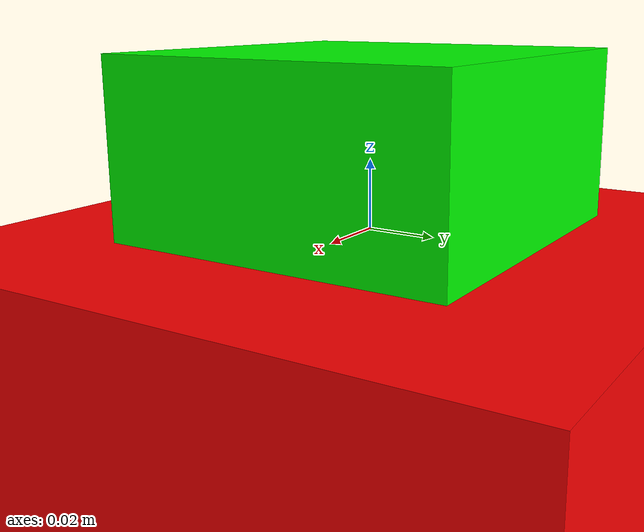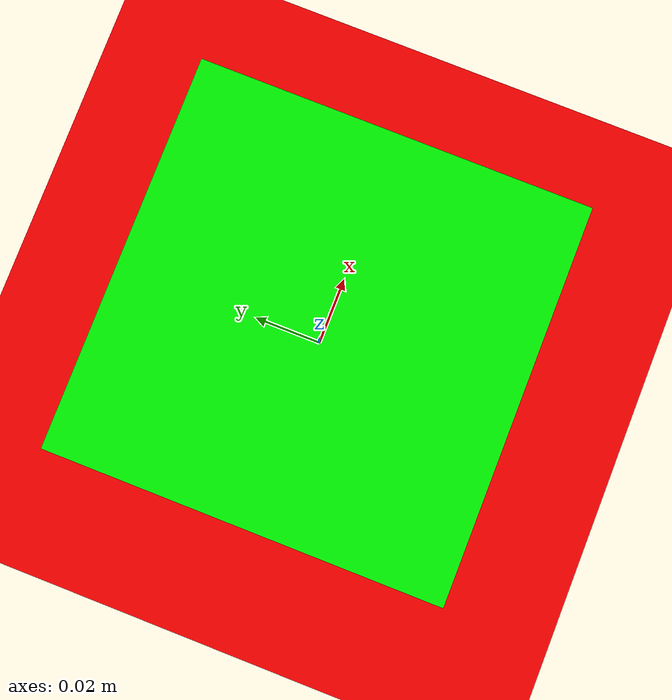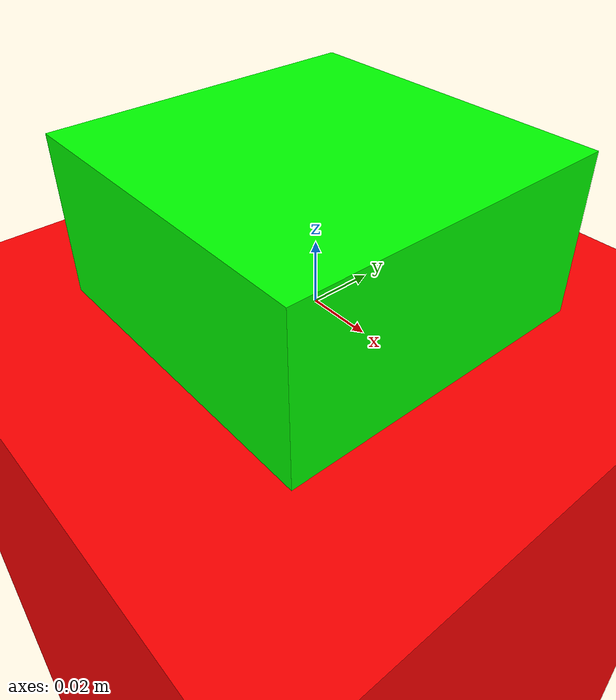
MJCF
<mujoco model="Cube">
        <compiler inertiafromgeom="true" angle="degree"/>
        <option timestep = "$dt">
                <flag refsafe = "disable" />
        </option>
        <asset>
                <texture name="grid" type="2d" builtin="checker" rgb1=".2 .3 .4" rgb2=".1 .15 .2" width="512" height="512" mark="edge" markrgb=".8 .8 .8"/>
                <material name="grid" texture="grid" texrepeat="1 1" texuniform="true" reflectance=".3"/>
        </asset>
        <worldbody>
                <geom name="floor" pos="0 0 -1.0" size="1.0 1.0 .01" type="plane" material="grid"/>
                <light directional="true" diffuse=".2 .2 .2" specular="0 0 0" pos="0 0 5" dir="0 0 -1" castshadow="false"/>
                <light directional="false" diffuse=".8 .8 .8" specular="0.3 0.3 0.3" pos="0 0 4.0" dir="0 0 -1"/>
                <body name="cube" pos="0 0 0">
                        <inertial pos="0.0 0.0 0.0" mass="0.37" fullinertia="0.0006167 0.0006167 0.0006167 0 0 0"/>
                        <freejoint name="cube_board"/>
                        <geom name="cube_geom" type="box" size="0.05 0.05 0.05" quat="1 0 0 0" friction="0.3 0.3 0.3" solref="-$stiffness -$damping" rgba="0 1 0 1.0" solimp="1.0 1.0 0.001 0.5 2" />
                </body>
                <body name="board" pos="0.0 0.0 -0.2">
                        <geom size="5.0 5.0 0.2" rgba="1 0 0 1" type="box" solref="-$stiffness -$damping" solimp="0.9 0.95 0.001 0.5 2"/>
                </body>
                <camera name="cam1" mode="targetbody" target="cube" pos="-0.5 -0.5 0.1" />
        </worldbody>
</mujoco>
